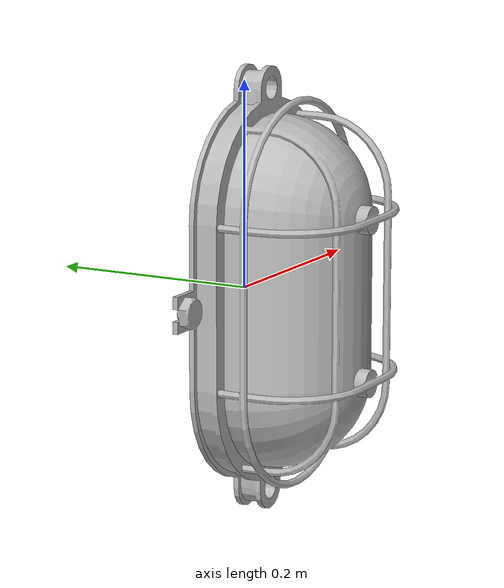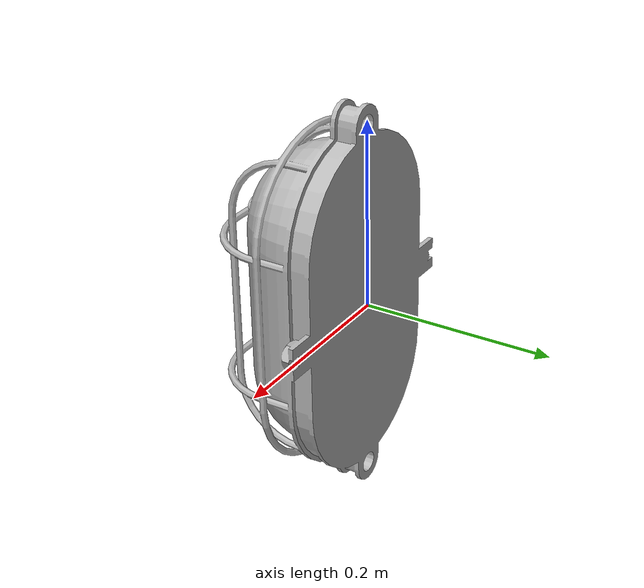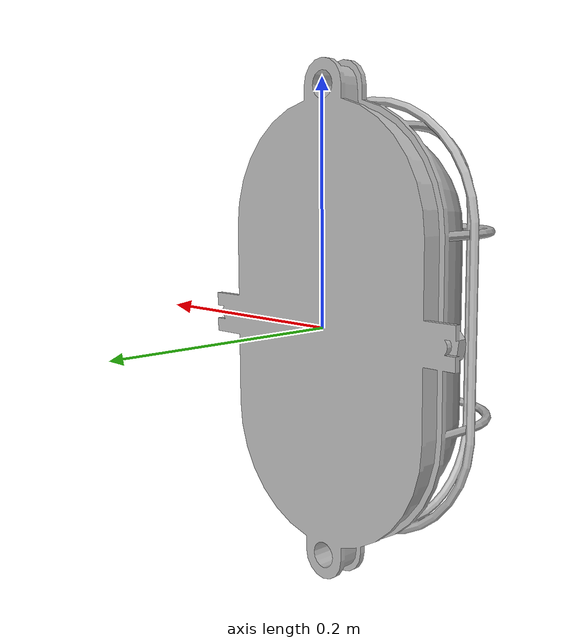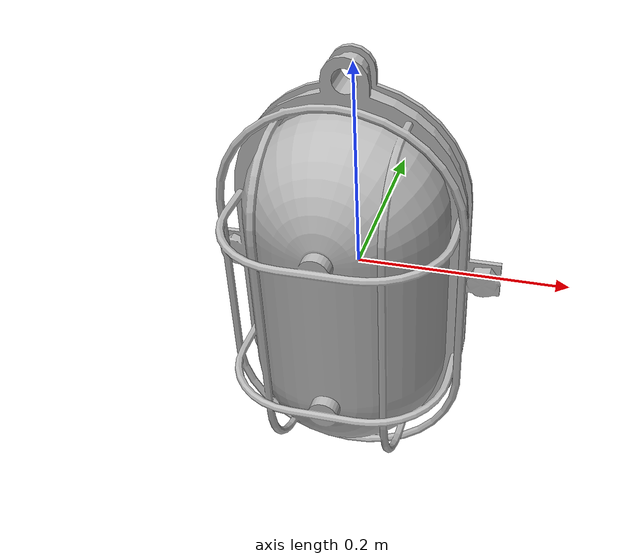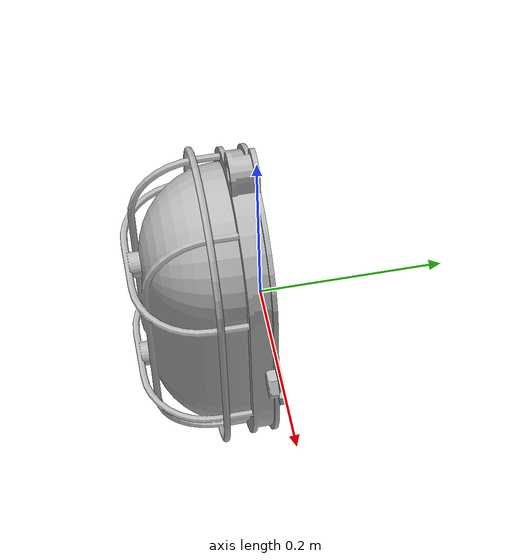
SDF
<?xml version="1.0"?>
<sdf version="1.10">
  <model name="wall_lamp">
    <static>true</static>
    <link name="lamp_link">
      <visual name="lamp_visual">
        <geometry>
          <mesh>
            <uri>model://wall_lamp/meshes/wall_lamp.dae</uri>
          </mesh>
        </geometry>
        <cast_shadows>false</cast_shadows>
      </visual>
      <light type="point" name="lamp_light">
        <pose>0 -0.2 0 0 0 0</pose>
        <diffuse>1 0.8 0.5 1</diffuse>
        <specular>0.9 0.9 0.9 1</specular>
        <attenuation>
            <range>3</range>
            <constant>0.5</constant>
            <linear>0.1</linear>
            <quadratic>0.01</quadratic>
        </attenuation>
        <cast_shadows>true</cast_shadows>
        <visualize>false</visualize>
    </light>
    </link>
  </model>
</sdf>
